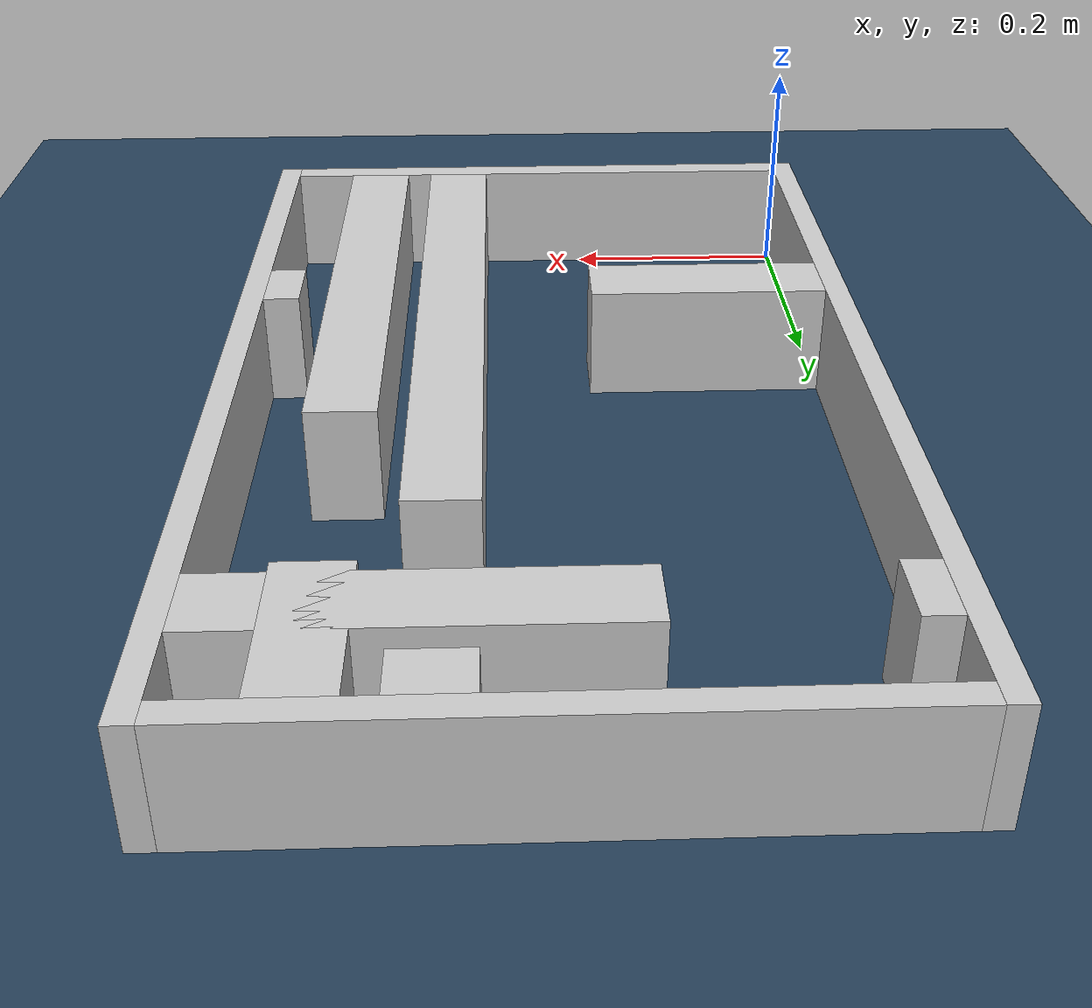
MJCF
<?xml version="1.0" ?>
<mujoco model="generated_real_template">
  <compiler angle="degree"/>
  <option timestep="0.002" integrator="implicitfast" iterations="100" cone="elliptic"/>
  <default>
    <geom density="1"/>
  </default>
  <asset>
    <texture builtin="gradient" height="3072" rgb1="0.3 0.5 0.7" rgb2="0 0 0" type="skybox" width="512"/>
    <texture builtin="checker" height="300" mark="edge" markrgb="0.8 0.8 0.8" name="groundplane" rgb1="0.2 0.3 0.4" rgb2="0.1 0.2 0.3" type="2d" width="300"/>
    <material name="groundplane" reflectance="0.2" texrepeat="5 5" texture="groundplane" texuniform="true"/>
  </asset>
  <worldbody>
    <light dir="0 0 -1" directional="true" pos="0 0 1.5"/>
    <geom name="floor" type="plane" condim="4" friction="0.5 0.005 0.001" material="groundplane" size="0 0 0.05"/>
    <body name="walls">
      <geom name="wall_boundary_left" type="box" condim="4" friction="1.0 0.005 0.0001" rgba="0.8 0.8 0.8 1" pos="-0.010000 0.387500 0.050000" euler="0 0 0.000000" size="0.010000 0.407500 0.050000"/>
      <geom name="wall_boundary_right" type="box" condim="4" friction="1.0 0.005 0.0001" rgba="0.8 0.8 0.8 1" pos="0.500000 0.387500 0.050000" euler="0 0 0.000000" size="0.010000 0.407500 0.050000"/>
      <geom name="wall_boundary_bottom" type="box" condim="4" friction="1.0 0.005 0.0001" rgba="0.8 0.8 0.8 1" pos="0.245000 -0.010000 0.050000" euler="0 0 0.000000" size="0.245000 0.010000 0.050000"/>
      <geom name="wall_boundary_top" type="box" condim="4" friction="1.0 0.005 0.0001" rgba="0.8 0.8 0.8 1" pos="0.245000 0.785000 0.050000" euler="0 0 0.000000" size="0.245000 0.010000 0.050000"/>
      <geom name="wall_inner_1_1" type="box" condim="4" friction="1.0 0.005 0.0001" rgba="0.8 0.8 0.8 1" pos="0.014297 0.687735 0.050000" euler="0 0 0.000000" size="0.014297 0.028500 0.050000"/>
      <geom name="wall_inner_1_2" type="box" condim="4" friction="1.0 0.005 0.0001" rgba="0.8 0.8 0.8 1" pos="0.336317 0.687735 0.050000" euler="0 0 0.000000" size="0.153683 0.028500 0.050000"/>
      <geom name="wall_inner_2_1" type="box" condim="4" friction="1.0 0.005 0.0001" rgba="0.8 0.8 0.8 1" pos="0.102517 0.248513 0.050000" euler="0 0 0.000000" size="0.102517 0.028500 0.050000"/>
      <geom name="wall_inner_2_2" type="box" condim="4" friction="1.0 0.005 0.0001" rgba="0.8 0.8 0.8 1" pos="0.474548 0.248513 0.050000" euler="0 0 0.000000" size="0.015452 0.028500 0.050000"/>
      <geom name="wall_inner_3_1" type="box" condim="4" friction="1.0 0.005 0.0001" rgba="0.8 0.8 0.8 1" pos="0.406581 0.232713 0.050000" euler="0 0 90.000000" size="0.232713 0.028500 0.050000"/>
      <geom name="wall_inner_3_2" type="box" condim="4" friction="1.0 0.005 0.0001" rgba="0.8 0.8 0.8 1" pos="0.406581 0.711835 0.050000" euler="0 0 90.000000" size="0.063165 0.028500 0.050000"/>
      <geom name="wall_inner_4_1" type="box" condim="4" friction="1.0 0.005 0.0001" rgba="0.8 0.8 0.8 1" pos="0.326827 0.291923 0.050000" euler="0 0 90.000000" size="0.291923 0.028500 0.050000"/>
      <geom name="wall_inner_4_2" type="box" condim="4" friction="1.0 0.005 0.0001" rgba="0.8 0.8 0.8 1" pos="0.326827 0.755342 0.050000" euler="0 0 90.000000" size="0.019658 0.028500 0.050000"/>
    </body>
  </worldbody>
</mujoco>
